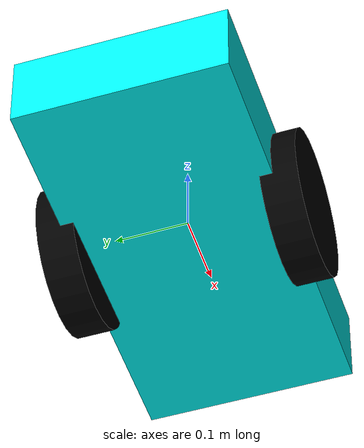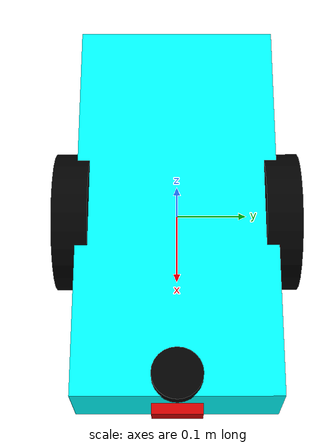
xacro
<?xml version="1.0"?>
<robot xmlns:xacro="http://www.ros.org/wiki/xacro" name="optimum_prime">
  <xacro:property name="base_width" value="0.285"/>
  <xacro:property name="base_length" value="0.555"/>
  <xacro:property name="base_height" value="0.11"/>
  <xacro:property name="collision" value="0.1"/>

  <xacro:property name="wheel_radius" value="0.10"/>
  <xacro:property name="wheel_width" value="0.05"/>
  <xacro:property name="wheel_ygap" value="0.026"/>
  <xacro:property name="wheel_zoff" value="0.02"/>

  <xacro:property name="caster_xoff" value="0.16"/>

  <!-- Material Properties -->
  <material name="black">
    <color rgba="0.0 0.0 0.0 1.0"/>
  </material>
  <material name="silver">
    <color rgba="0.8 0.8 0.8 1.0"/>
  </material>
  <material name="red">
    <color rgba="0.8 0.0 0.0 1.0"/>
  </material>

    <!-- Robot Base -->
  <link name="base_link">
    <visual>
      <geometry>
        <box size="${base_length} ${base_width} ${base_height}"/>
      </geometry>
      <material name="Cyan">
        <color rgba="0 1.0 1.0 1.0"/>
      </material>
    </visual>
    <collision>
      <geometry>
        <box size="${base_length+collision} ${base_width+collision} ${base_height}"/>
      </geometry>
    </collision>
  </link>

   <!-- Robot Footprint -->
  <link name="base_footprint"/>

  <joint name="base_joint" type="fixed">
    <parent link="base_link"/>
    <child link="base_footprint"/>
    <origin xyz="0.0 0.0 ${-(wheel_radius+wheel_zoff)}" rpy="0 0 0"/>
  </joint>

  <!-- Wheels -->
  <!-- Wheel Description -->
<!-- Left Wheel -->
  <link name="left_wheel_link">
    <visual>
      <origin xyz="0 0 0" rpy="1.5708 0 0"/> <!-- Match this with joint origin -->
      <geometry>
        <cylinder radius="0.10" length="0.05"/>
      </geometry>
      <material name="black"/>
    </visual>
  </link>

  <joint name="left_wheel_joint" type="continuous">
    <parent link="base_link"/>
    <child link="left_wheel_link"/>
    <origin xyz="0 0.15 -0.02" rpy="0 0 0"/>
    <axis xyz="0 1 0"/>
  </joint>

<!-- Right Wheel -->
  <link name="right_wheel_link">
    <visual>
      <origin xyz="0 0 0" rpy="1.5708 0 0"/> <!-- Match this with joint origin -->
      <geometry>
        <cylinder radius="0.10" length="0.05"/>
      </geometry>
      <material name="black"/>
    </visual>
  </link>

  <joint name="right_wheel_joint" type="continuous">
    <parent link="base_link"/>
    <child link="right_wheel_link"/>
    <origin xyz="0 -0.15 -0.02" rpy="0 0 0"/>
    <axis xyz="0 1 0"/>
  </joint>

  <!-- Castor Wheels -->
  <!-- Front Castor -->
  <link name="front_castor">
    <visual>
      <geometry>
        <sphere radius="0.03"/>
      </geometry>
      <material name="black"/>
    </visual>
    <collision>
      <geometry>
        <sphere radius="${wheel_radius}"/>
      </geometry>
    </collision>
  </link>
  <joint name="front_castor_joint" type="fixed">
    <parent link="base_link"/>
    <child link="front_castor"/>
    <origin xyz="${caster_xoff} 0 -${wheel_zoff}" rpy="0 0 0"/>
  </joint>

  <!-- Rear Castor -->
  <link name="rear_castor">
    <visual>
      <geometry>
        <sphere radius="0.03"/>
      </geometry>
      <material name="black"/>
    </visual>
    <collision>
      <geometry>
        <sphere radius="${wheel_radius}"/>
      </geometry>
    </collision>
  </link>
  <joint name="rear_castor_joint" type="fixed">
    <parent link="base_link"/>
    <child link="rear_castor"/>
    <origin xyz="-${caster_xoff} 0 -${wheel_zoff}" rpy="0 0 0"/>
  </joint>

  <!-- LiDAR -->
  <link name="base_scan">
    <visual>
      <geometry>
        <cylinder radius="0.035" length="0.02"/>
      </geometry>
      <material name="black"/>
    </visual>
    <collision>
      <geometry>
        <cylinder radius="0.035" length="0.02"/>
      </geometry>
    </collision>
  </link>

  <!-- Fixed Joint for LiDAR -->
  <joint name="base_scan_joint" type="fixed">
    <parent link="base_link"/>
    <child link="base_scan"/>
    <origin xyz="0.25 0 0.06" rpy="0 0 0"/>
  </joint>

  <!-- Camera -->
  <link name="camera_link">
    <visual>
      <geometry>
        <box size="0.03 0.07 0.03"/>
      </geometry>
      <material name="red"/>
    </visual>
    <collision>
      <geometry>
        <box size="0.03 0.07 0.03"/>
      </geometry>
    </collision>
  </link>

  <!-- Fixed Joint for Camera -->
  <joint name="camera_joint" type="fixed">
    <parent link="base_link"/>
    <child link="camera_link"/>
    <origin xyz="0.2775 0 0" rpy="0 0 0"/>
  </joint>

</robot>
